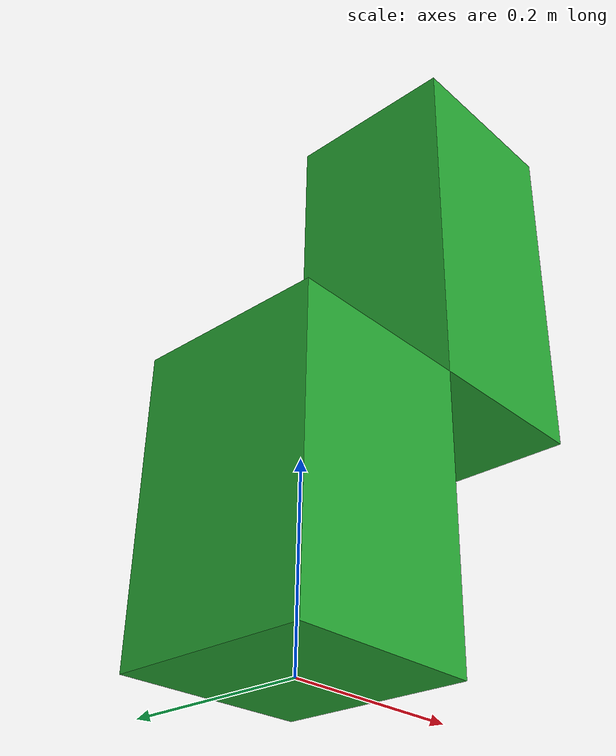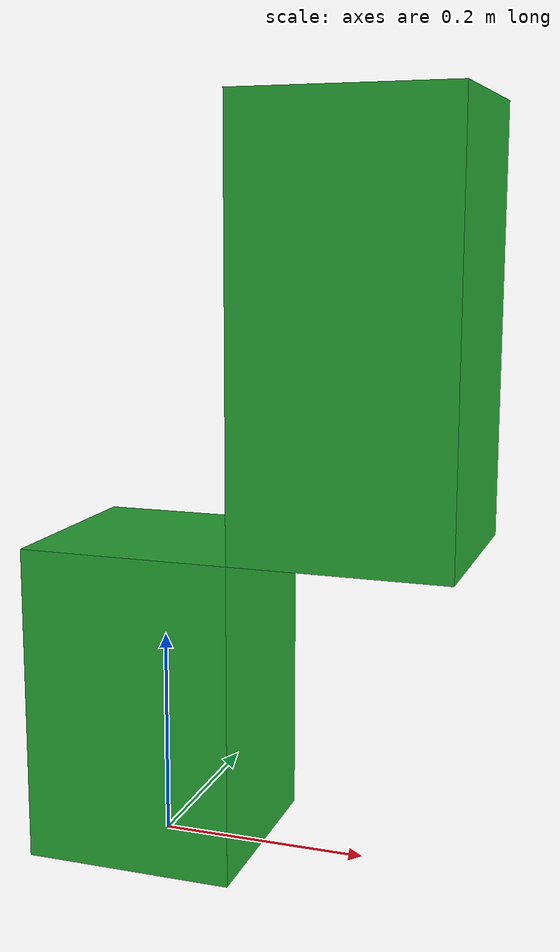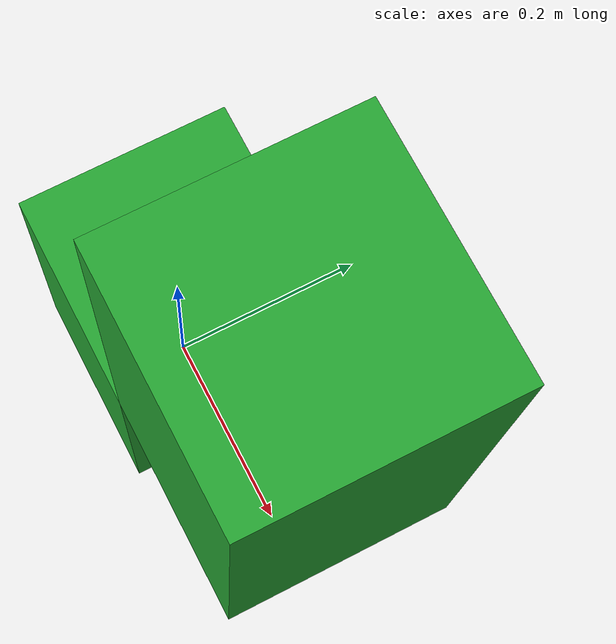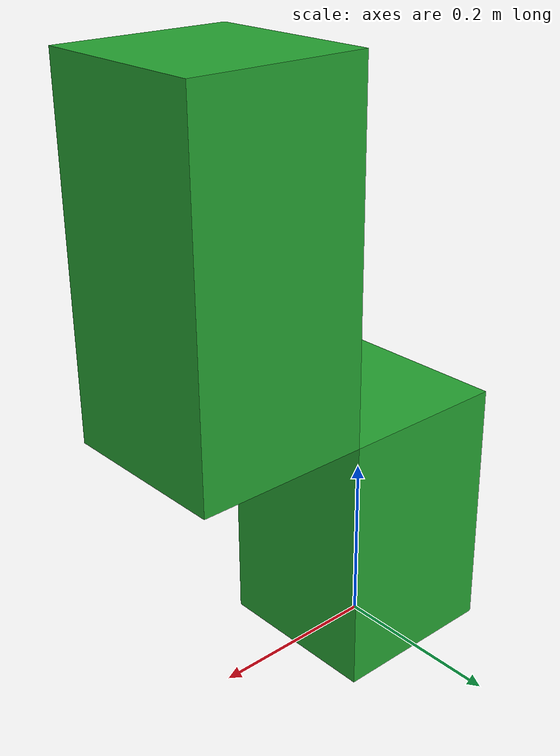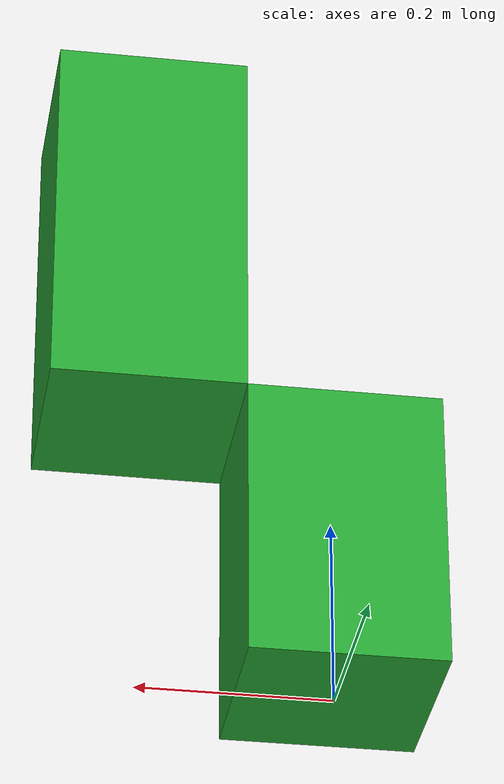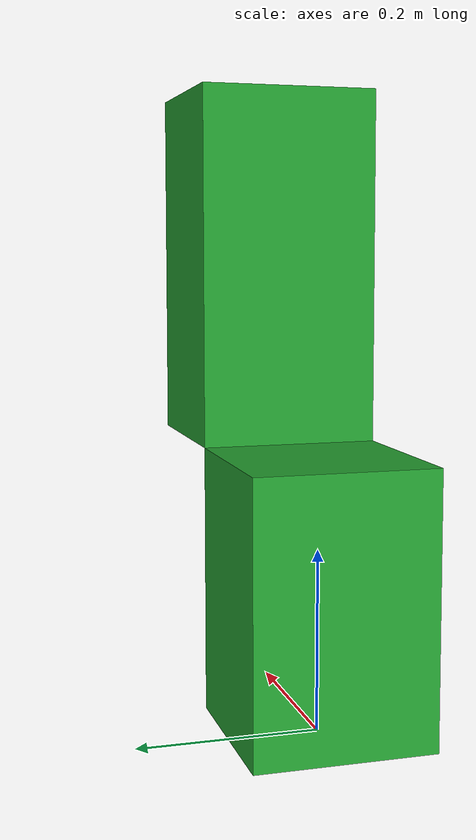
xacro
<?xml version="1.0"?>
<robot xmlns:xacro="http://www.ros.org/wiki/xacro">

    <link name="world"></link>

    <xacro:property name="robot_link_0_side" value="0.2" />
    <xacro:property name="robot_link_0_length" value="0.3" />
    <link name="robot_link_0">
        <visual>
            <origin xyz="0 0 ${robot_link_0_length / 2}" rpy="0 0 0" />
            <geometry>
                <box size="${robot_link_0_side} ${robot_link_0_side} ${robot_link_0_length}" />
            </geometry>
            <material name="green" />
        </visual>
        <collision>
            <origin xyz="0 0 ${robot_link_0_length / 2}" rpy="0 0 0" />
            <geometry>
                <box size="${robot_link_0_side} ${robot_link_0_side} ${robot_link_0_length}" />
            </geometry>
        </collision>
        <xacro:inertial_box mass="0.1" x="${robot_link_0_side}" y="${robot_link_0_side}" z="${robot_link_0_length}">
            <origin xyz="0 0 ${robot_link_0_side/2}" rpy="0 0 0"/>
        </xacro:inertial_box>
    </link>

    <xacro:property name="robot_link_1_side" value="0.2" />
    <xacro:property name="robot_link_1_length" value="0.4" />
    <link name="robot_link_1">
        <visual>
            <origin xyz="0 0 ${robot_link_1_length / 2}" rpy="0 0 0" />
            <geometry>
                <box size="${robot_link_1_side} ${robot_link_1_side} ${robot_link_1_length}" />
            </geometry>
            <material name="green" />
        </visual>
        <collision>
            <origin xyz="0 0 ${robot_link_1_length / 2}" rpy="0 0 0" />
            <geometry>
                <box size="${robot_link_1_side} ${robot_link_1_side} ${robot_link_1_length}" />
            </geometry>
        </collision>
        <xacro:inertial_box mass="0.1" x="${robot_link_1_side}" y="${robot_link_1_side}" z="${robot_link_1_length}">
            <origin xyz="0 0 ${robot_link_1_side/2}" rpy="0 0 0"/>
        </xacro:inertial_box>
    </link>

    <joint name="robot_link_0_joint" type="fixed">
        <origin xyz="0 0 0" rpy="0 0 0"/>
        <parent link="world"/>
        <child link="robot_link_0"/>
    </joint>

    <joint name="robot_link_1_joint" type="revolute">
        <origin xyz="${(robot_link_1_side/2)+(robot_link_0_side/2)} 0 ${robot_link_0_length}" rpy="0 0 0"/>
        <parent link="robot_link_0"/>
        <child link="robot_link_1"/>
        <axis xyz="1 0 0"/>
        <limit lower="${-2*pi}" upper="${2*pi}" velocity="100" effort="100"/>
    </joint>

</robot>
